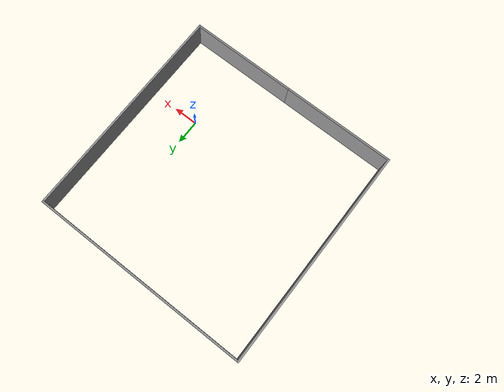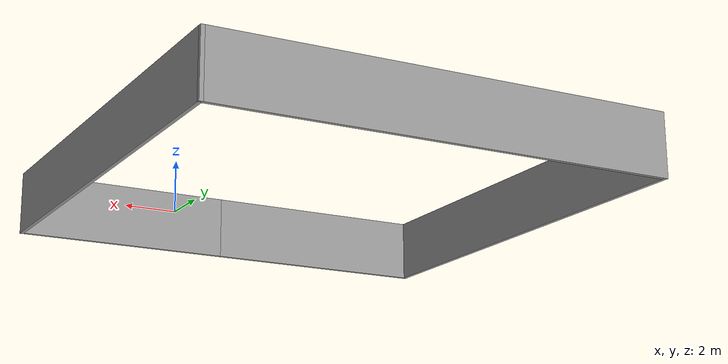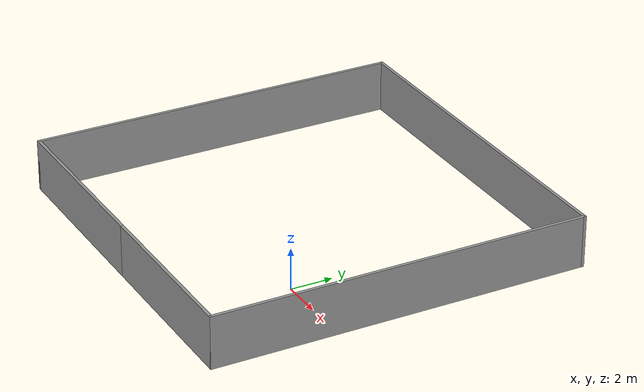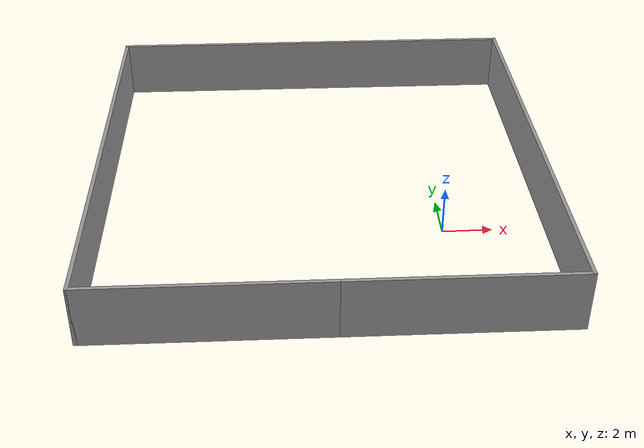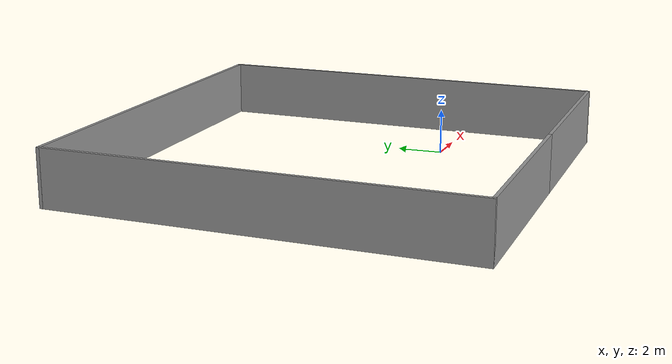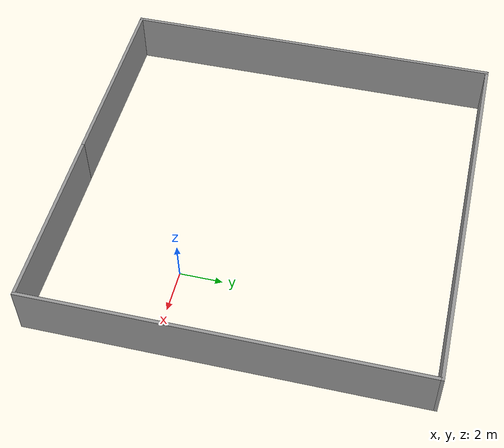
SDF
<?xml version='1.0'?>
<sdf version='1.7'>
  <model name='walls'>
    <pose>-4.73553 3.15832 0 0 -0 0</pose>
    <link name='Wall_4'>
      <collision name='Wall_4_Collision'>
        <geometry>
          <box>
            <size>8.75 0.15 2.5</size>
          </box>
        </geometry>
        <pose>0 0 1.25 0 -0 0</pose>
      </collision>
      <visual name='Wall_4_Visual'>
        <pose>0 0 1.25 0 -0 0</pose>
        <geometry>
          <box>
            <size>8.75 0.15 2.5</size>
          </box>
        </geometry>
        <material>
          <script>
            <uri>file://media/materials/scripts/gazebo.material</uri>
            <name>Gazebo/Grey</name>
          </script>
          <ambient>1 1 1 1</ambient>
        </material>
        <meta>
          <layer>0</layer>
        </meta>
      </visual>
      <pose>4.625 -9.05 0 0 -0 0</pose>
    </link>
    <link name='Wall_5'>
      <collision name='Wall_5_Collision'>
        <geometry>
          <box>
            <size>18.25 0.15 2.5</size>
          </box>
        </geometry>
        <pose>0 0 1.25 0 -0 0</pose>
      </collision>
      <visual name='Wall_5_Visual'>
        <pose>0 0 1.25 0 -0 0</pose>
        <geometry>
          <box>
            <size>18.25 0.15 2.5</size>
          </box>
        </geometry>
        <material>
          <script>
            <uri>file://media/materials/scripts/gazebo.material</uri>
            <name>Gazebo/Grey</name>
          </script>
          <ambient>1 1 1 1</ambient>
        </material>
        <meta>
          <layer>0</layer>
        </meta>
      </visual>
      <pose>8.925 -0 0 0 -0 1.5708</pose>
    </link>
    <link name='Wall_6'>
      <collision name='Wall_6_Collision'>
        <geometry>
          <box>
            <size>18 0.15 2.5</size>
          </box>
        </geometry>
        <pose>0 0 1.25 0 -0 0</pose>
      </collision>
      <visual name='Wall_6_Visual'>
        <pose>0 0 1.25 0 -0 0</pose>
        <geometry>
          <box>
            <size>18 0.15 2.5</size>
          </box>
        </geometry>
        <material>
          <script>
            <uri>file://media/materials/scripts/gazebo.material</uri>
            <name>Gazebo/Grey</name>
          </script>
          <ambient>1 1 1 1</ambient>
        </material>
        <meta>
          <layer>0</layer>
        </meta>
      </visual>
      <pose>-0 9.05 0 0 -0 3.14159</pose>
    </link>
    <link name='Wall_7'>
      <collision name='Wall_7_Collision'>
        <geometry>
          <box>
            <size>18.25 0.15 2.5</size>
          </box>
        </geometry>
        <pose>0 0 1.25 0 -0 0</pose>
      </collision>
      <visual name='Wall_7_Visual'>
        <pose>0 0 1.25 0 -0 0</pose>
        <geometry>
          <box>
            <size>18.25 0.15 2.5</size>
          </box>
        </geometry>
        <material>
          <script>
            <uri>file://media/materials/scripts/gazebo.material</uri>
            <name>Gazebo/Grey</name>
          </script>
          <ambient>1 1 1 1</ambient>
        </material>
        <meta>
          <layer>0</layer>
        </meta>
      </visual>
      <pose>-8.925 -0 0 0 -0 -1.5708</pose>
    </link>
    <link name='Wall_8'>
      <collision name='Wall_8_Collision'>
        <geometry>
          <box>
            <size>9.25 0.15 2.5</size>
          </box>
        </geometry>
        <pose>0 0 1.25 0 -0 0</pose>
      </collision>
      <visual name='Wall_8_Visual'>
        <pose>0 0 1.25 0 -0 0</pose>
        <geometry>
          <box>
            <size>9.25 0.15 2.5</size>
          </box>
        </geometry>
        <material>
          <script>
            <uri>file://media/materials/scripts/gazebo.material</uri>
            <name>Gazebo/Grey</name>
          </script>
          <ambient>1 1 1 1</ambient>
        </material>
        <meta>
          <layer>0</layer>
        </meta>
      </visual>
      <pose>-4.375 -9.05 0 0 -0 0</pose>
    </link>
    <static>1</static>
  </model>
</sdf>
